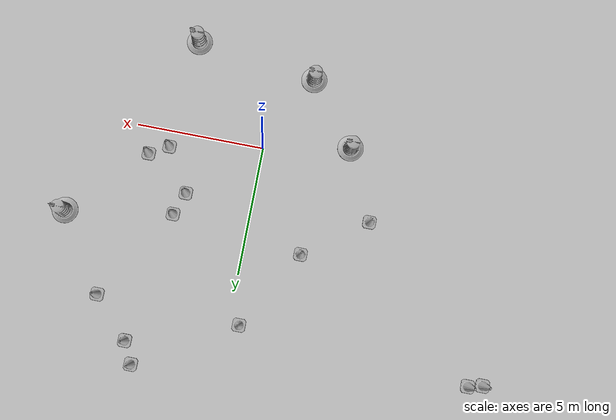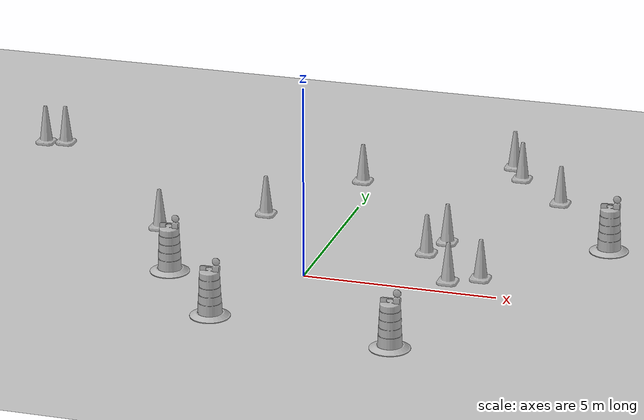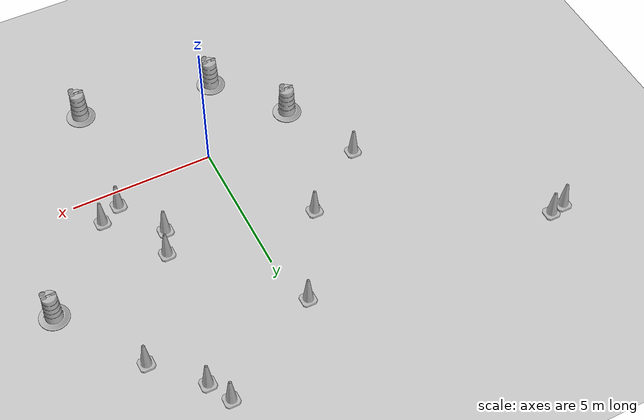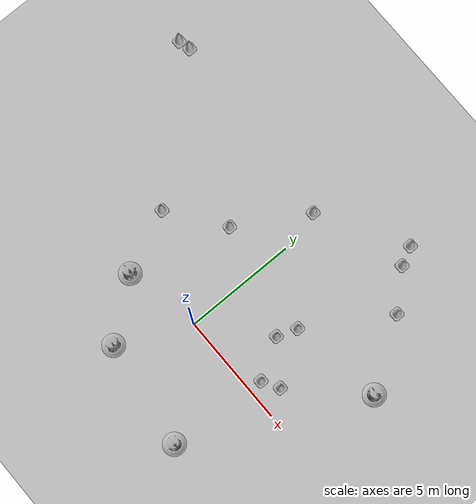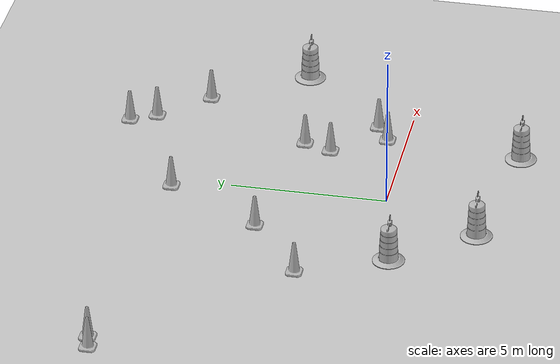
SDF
<sdf version="1.7">
 <world name="default">
  <light name="sun" type="directional">
   <pose>0 0 10 0 -0 0</pose>
   <diffuse>0.8 0.8 0.8 1</diffuse>
   <specular>0.2 0.2 0.2 1</specular>
   <attenuation>
    <range>1000</range>
    <constant>0.9</constant>
    <linear>0.01</linear>
    <quadratic>0.001</quadratic>
   </attenuation>
   <direction>-0.5 0.1 -0.9</direction>
   <spot><inner_angle>0</inner_angle><outer_angle>0</outer_angle><falloff>0</falloff></spot>
  </light>
  <model name="ground_plane">
   <static>1</static>
   <link name="link">
    <collision name="collision">
     <geometry><plane><normal>0 0 1</normal><size>100 100</size></plane></geometry>
     <surface><friction><ode><mu>100</mu><mu2>50</mu2></ode></friction></surface>
    </collision>
    <visual name="visual">
     <cast_shadows>0</cast_shadows>
     <geometry><plane><normal>0 0 1</normal><size>100 100</size></plane></geometry>
     <material>
      <script><uri>file://media/materials/scripts/gazebo.material</uri><name>Gazebo/Grey</name></script>
     </material>
    </visual>
   </link>
  </model>
  <gravity>0 0 -9.8</gravity>
  <magnetic_field>6e-06 2.3e-05 -4.2e-05</magnetic_field>
  <atmosphere type="adiabatic"/>
  <physics type="ode">
   <max_step_size>0.001</max_step_size>
   <real_time_factor>1</real_time_factor>
   <real_time_update_rate>1000</real_time_update_rate>
  </physics>
  <scene><ambient>0.4 0.4 0.4 1</ambient><background>0.7 0.7 0.7 1</background><shadows>1</shadows></scene>
  <audio><device>default</device></audio>
  <spherical_coordinates>
   <surface_model>EARTH_WGS84</surface_model>
   <latitude_deg>0</latitude_deg>
   <longitude_deg>0</longitude_deg>
   <elevation>0</elevation>
   <heading_deg>0</heading_deg>
  </spherical_coordinates>
  <model name="Construction Cone">
   <link name="link">
    <collision name="collision">
     <geometry>
      <mesh><scale>10 10 10</scale><uri>model://construction_cone/meshes/construction_cone.dae</uri></mesh>
     </geometry>
    </collision>
    <visual name="visual">
     <geometry>
      <mesh><scale>10 10 10</scale><uri>model://construction_cone/meshes/construction_cone.dae</uri></mesh>
     </geometry>
    </visual>
    <inertial>
     <inertia><ixx>1</ixx><ixy>0</ixy><ixz>0</ixz><iyy>1</iyy><iyz>0</iyz><izz>1</izz></inertia>
     <mass>1</mass>
    </inertial>
   </link>
   <pose>2.9121 3.18685 0 -0 -0 -0</pose>
  </model>
  <model name="Construction Cone_0">
   <link name="link">
    <collision name="collision">
     <geometry>
      <mesh><scale>10 10 10</scale><uri>model://construction_cone/meshes/construction_cone.dae</uri></mesh>
     </geometry>
    </collision>
    <visual name="visual">
     <geometry>
      <mesh><scale>10 10 10</scale><uri>model://construction_cone/meshes/construction_cone.dae</uri></mesh>
     </geometry>
    </visual>
    <inertial>
     <inertia><ixx>1</ixx><ixy>0</ixy><ixz>0</ixz><iyy>1</iyy><iyz>0</iyz><izz>1</izz></inertia>
     <mass>1</mass>
    </inertial>
   </link>
   <pose>2.59731 2.29419 -0 0 -0 0</pose>
  </model>
  <model name="Construction Cone_1">
   <link name="link">
    <collision name="collision">
     <geometry>
      <mesh><scale>10 10 10</scale><uri>model://construction_cone/meshes/construction_cone.dae</uri></mesh>
     </geometry>
    </collision>
    <visual name="visual">
     <geometry>
      <mesh><scale>10 10 10</scale><uri>model://construction_cone/meshes/construction_cone.dae</uri></mesh>
     </geometry>
    </visual>
    <inertial>
     <inertia><ixx>1</ixx><ixy>0</ixy><ixz>0</ixz><iyy>1</iyy><iyz>0</iyz><izz>1</izz></inertia>
     <mass>1</mass>
    </inertial>
   </link>
   <pose>-2.20526 3.77709 0 -0 -0 -0</pose>
  </model>
  <model name="Construction Cone_2">
   <link name="link">
    <collision name="collision">
     <geometry>
      <mesh><scale>10 10 10</scale><uri>model://construction_cone/meshes/construction_cone.dae</uri></mesh>
     </geometry>
    </collision>
    <visual name="visual">
     <geometry>
      <mesh><scale>10 10 10</scale><uri>model://construction_cone/meshes/construction_cone.dae</uri></mesh>
     </geometry>
    </visual>
    <inertial>
     <inertia><ixx>1</ixx><ixy>0</ixy><ixz>0</ixz><iyy>1</iyy><iyz>0</iyz><izz>1</izz></inertia>
     <mass>1</mass>
    </inertial>
   </link>
   <pose>-4.58177 2.04674 -1e-05 0 -0 0</pose>
  </model>
  <model name="Construction Barrel">
   <link name="link">
    <inertial>
     <pose>0 0 0.4 0 -0 0</pose>
     <mass>500</mass>
     <inertia><ixx>51.2096</ixx><iyy>51.2096</iyy><izz>25</izz><ixy>0</ixy><ixz>0</ixz><iyz>0</iyz></inertia>
    </inertial>
    <collision name="collision">
     <geometry><mesh><uri>model://construction_barrel/meshes/construction_barrel.dae</uri></mesh></geometry>
    </collision>
    <visual name="visual">
     <geometry><mesh><uri>model://construction_barrel/meshes/construction_barrel.dae</uri></mesh></geometry>
    </visual>
   </link>
   <pose>-3.35343 -0.679448 1e-06 3e-06 2e-06 -2.6e-05</pose>
  </model>
  <model name="Construction Barrel_0">
   <link name="link">
    <inertial>
     <pose>0 0 0.4 0 -0 0</pose>
     <mass>500</mass>
     <inertia><ixx>51.2096</ixx><iyy>51.2096</iyy><izz>25</izz><ixy>0</ixy><ixz>0</ixz><iyz>0</iyz></inertia>
    </inertial>
    <collision name="collision">
     <geometry><mesh><uri>model://construction_barrel/meshes/construction_barrel.dae</uri></mesh></geometry>
    </collision>
    <visual name="visual">
     <geometry><mesh><uri>model://construction_barrel/meshes/construction_barrel.dae</uri></mesh></geometry>
    </visual>
   </link>
   <pose>-1.45937 -3.11548 1e-06 3e-06 2e-06 -2.6e-05</pose>
  </model>
  <model name="Construction Cone_3">
   <link name="link">
    <collision name="collision">
     <geometry>
      <mesh><scale>10 10 10</scale><uri>model://construction_cone/meshes/construction_cone.dae</uri></mesh>
     </geometry>
    </collision>
    <visual name="visual">
     <geometry>
      <mesh><scale>10 10 10</scale><uri>model://construction_cone/meshes/construction_cone.dae</uri></mesh>
     </geometry>
    </visual>
    <inertial>
     <inertia><ixx>1</ixx><ixy>0</ixy><ixz>0</ixz><iyy>1</iyy><iyz>0</iyz><izz>1</izz></inertia>
     <mass>1</mass>
    </inertial>
   </link>
   <pose>5.10563 6.74716 -0 0 -1e-06 0</pose>
  </model>
  <model name="Construction Cone_4">
   <link name="link">
    <collision name="collision">
     <geometry>
      <mesh><scale>10 10 10</scale><uri>model://construction_cone/meshes/construction_cone.dae</uri></mesh>
     </geometry>
    </collision>
    <visual name="visual">
     <geometry>
      <mesh><scale>10 10 10</scale><uri>model://construction_cone/meshes/construction_cone.dae</uri></mesh>
     </geometry>
    </visual>
    <inertial>
     <inertia><ixx>1</ixx><ixy>0</ixy><ixz>0</ixz><iyy>1</iyy><iyz>0</iyz><izz>1</izz></inertia>
     <mass>1</mass>
    </inertial>
   </link>
   <pose>3.69871 8.24476 -0 0 -0 0</pose>
  </model>
  <model name="Construction Cone_5">
   <link name="link">
    <collision name="collision">
     <geometry>
      <mesh><scale>10 10 10</scale><uri>model://construction_cone/meshes/construction_cone.dae</uri></mesh>
     </geometry>
    </collision>
    <visual name="visual">
     <geometry>
      <mesh><scale>10 10 10</scale><uri>model://construction_cone/meshes/construction_cone.dae</uri></mesh>
     </geometry>
    </visual>
    <inertial>
     <inertia><ixx>1</ixx><ixy>0</ixy><ixz>0</ixz><iyy>1</iyy><iyz>0</iyz><izz>1</izz></inertia>
     <mass>1</mass>
    </inertial>
   </link>
   <pose>-0.415891 6.85455 -0 0 -1e-06 0</pose>
  </model>
  <model name="Construction Cone_6">
   <link name="link">
    <collision name="collision">
     <geometry>
      <mesh><scale>10 10 10</scale><uri>model://construction_cone/meshes/construction_cone.dae</uri></mesh>
     </geometry>
    </collision>
    <visual name="visual">
     <geometry>
      <mesh><scale>10 10 10</scale><uri>model://construction_cone/meshes/construction_cone.dae</uri></mesh>
     </geometry>
    </visual>
    <inertial>
     <inertia><ixx>1</ixx><ixy>0</ixy><ixz>0</ixz><iyy>1</iyy><iyz>0</iyz><izz>1</izz></inertia>
     <mass>1</mass>
    </inertial>
   </link>
   <pose>3.60071 0.61376 -0 0 -0 0</pose>
  </model>
  <model name="Construction Cone_7">
   <link name="link">
    <collision name="collision">
     <geometry>
      <mesh><scale>10 10 10</scale><uri>model://construction_cone/meshes/construction_cone.dae</uri></mesh>
     </geometry>
    </collision>
    <visual name="visual">
     <geometry>
      <mesh><scale>10 10 10</scale><uri>model://construction_cone/meshes/construction_cone.dae</uri></mesh>
     </geometry>
    </visual>
    <inertial>
     <inertia><ixx>1</ixx><ixy>0</ixy><ixz>0</ixz><iyy>1</iyy><iyz>0</iyz><izz>1</izz></inertia>
     <mass>1</mass>
    </inertial>
   </link>
   <pose>4.3406 1.03757 -0 0 -1e-06 0</pose>
  </model>
  <model name="Construction Barrel_1">
   <link name="link">
    <inertial>
     <pose>0 0 0.4 0 -0 0</pose>
     <mass>500</mass>
     <inertia><ixx>51.2096</ixx><iyy>51.2096</iyy><izz>25</izz><ixy>0</ixy><ixz>0</ixz><iyz>0</iyz></inertia>
    </inertial>
    <collision name="collision">
     <geometry><mesh><uri>model://construction_barrel/meshes/construction_barrel.dae</uri></mesh></geometry>
    </collision>
    <visual name="visual">
     <geometry><mesh><uri>model://construction_barrel/meshes/construction_barrel.dae</uri></mesh></geometry>
    </visual>
   </link>
   <pose>3.30945 -3.77449 1e-06 3e-06 2e-06 -2.6e-05</pose>
  </model>
  <model name="Construction Cone_8">
   <link name="link">
    <collision name="collision">
     <geometry>
      <mesh><scale>10 10 10</scale><uri>model://construction_cone/meshes/construction_cone.dae</uri></mesh>
     </geometry>
    </collision>
    <visual name="visual">
     <geometry>
      <mesh><scale>10 10 10</scale><uri>model://construction_cone/meshes/construction_cone.dae</uri></mesh>
     </geometry>
    </visual>
    <inertial>
     <inertia><ixx>1</ixx><ixy>0</ixy><ixz>0</ixz><iyy>1</iyy><iyz>0</iyz><izz>1</izz></inertia>
     <mass>1</mass>
    </inertial>
   </link>
   <pose>3.28887 9.05821 -0 0 -1e-06 0</pose>
  </model>
  <model name="Construction Barrel_2">
   <link name="link">
    <inertial>
     <pose>0 0 0.4 0 -0 0</pose>
     <mass>500</mass>
     <inertia><ixx>51.2096</ixx><iyy>51.2096</iyy><izz>25</izz><ixy>0</ixy><ixz>0</ixz><iyz>0</iyz></inertia>
    </inertial>
    <collision name="collision">
     <geometry><mesh><uri>model://construction_barrel/meshes/construction_barrel.dae</uri></mesh></geometry>
    </collision>
    <visual name="visual">
     <geometry><mesh><uri>model://construction_barrel/meshes/construction_barrel.dae</uri></mesh></geometry>
    </visual>
   </link>
   <pose>7.04827 3.83263 1e-06 1e-06 2e-06 -2.3e-05</pose>
  </model>
  <model name="Construction Cone_9">
   <link name="link">
    <collision name="collision">
     <geometry>
      <mesh><scale>10 10 10</scale><uri>model://construction_cone/meshes/construction_cone.dae</uri></mesh>
     </geometry>
    </collision>
    <visual name="visual">
     <geometry>
      <mesh><scale>10 10 10</scale><uri>model://construction_cone/meshes/construction_cone.dae</uri></mesh>
     </geometry>
    </visual>
    <inertial>
     <inertia><ixx>1</ixx><ixy>0</ixy><ixz>0</ixz><iyy>1</iyy><iyz>0</iyz><izz>1</izz></inertia>
     <mass>1</mass>
    </inertial>
   </link>
   <pose>-9.2628 7.43398 0 -0 -0 -0</pose>
  </model>
  <model name="Construction Cone_10">
   <link name="link">
    <collision name="collision">
     <geometry>
      <mesh><scale>10 10 10</scale><uri>model://construction_cone/meshes/construction_cone.dae</uri></mesh>
     </geometry>
    </collision>
    <visual name="visual">
     <geometry>
      <mesh><scale>10 10 10</scale><uri>model://construction_cone/meshes/construction_cone.dae</uri></mesh>
     </geometry>
    </visual>
    <inertial>
     <inertia><ixx>1</ixx><ixy>0</ixy><ixz>0</ixz><iyy>1</iyy><iyz>0</iyz><izz>1</izz></inertia>
     <mass>1</mass>
    </inertial>
   </link>
   <pose>-9.80498 7.3039 -1e-05 0 -0 0</pose>
  </model>
 </world>
</sdf>
